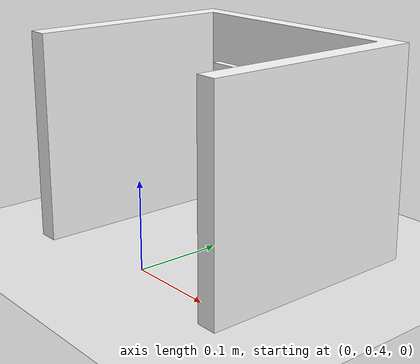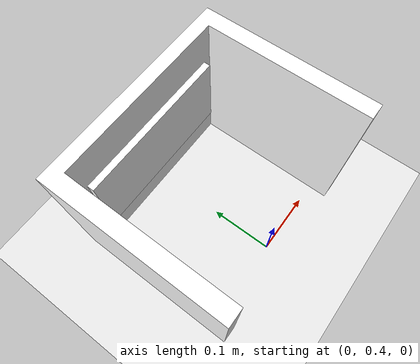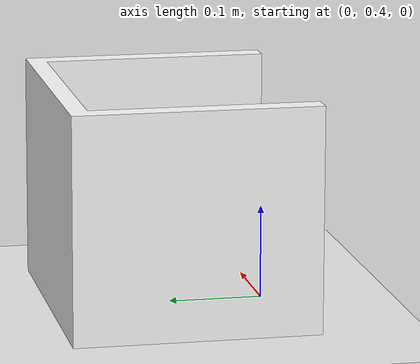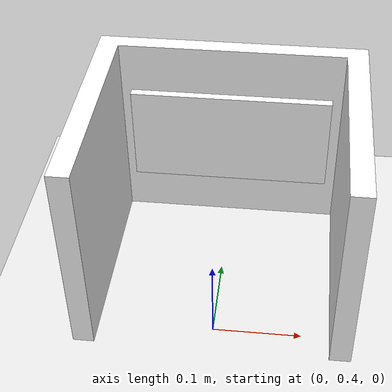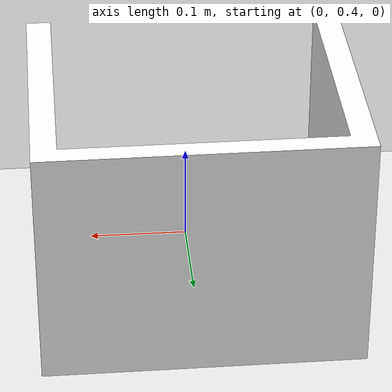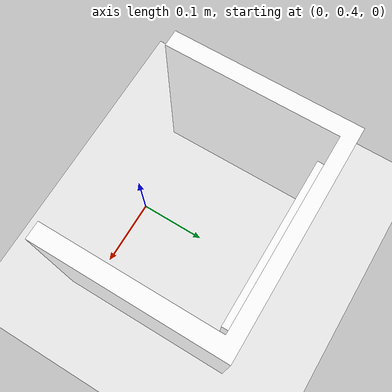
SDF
<sdf version='1.7'>
  <world name='tam_experiment'>
    <light name='sun' type='directional'>
      <cast_shadows>1</cast_shadows>
      <pose>0 0 4 0 -0 0</pose>
      <diffuse>1 1 1 1</diffuse>
      <specular>0.6 0.6 0.6 1</specular>
      <attenuation>
        <range>1500</range>
        <constant>0.9</constant>
        <linear>0.01</linear>
        <quadratic>0.005</quadratic>
      </attenuation>
      <direction>-0.5 0.1 -0.9</direction>
      <spot>
        <inner_angle>0</inner_angle>
        <outer_angle>0</outer_angle>
        <falloff>0</falloff>
      </spot>
    </light>
    <model name='ground_plane'>
      <static>1</static>
      <link name='link'>
        <collision name='collision'>
          <geometry>
            <plane>
              <normal>0 0 1</normal>
              <size>100 100</size>
            </plane>
          </geometry>
          <surface>
            <contact>
              <collide_bitmask>65535</collide_bitmask>
              <ode/>
            </contact>
            <friction>
              <ode>
                <mu>100</mu>
                <mu2>50</mu2>
              </ode>
              <torsional>
                <ode/>
              </torsional>
            </friction>
            <bounce/>
          </surface>
          <max_contacts>10</max_contacts>
        </collision>
        <visual name='visual'>
          <cast_shadows>0</cast_shadows>
          <geometry>
            <plane>
              <normal>0 0 1</normal>
              <size>100 100</size>
            </plane>
          </geometry>
          <material>
            <script>
              <uri>file://media/materials/scripts/gazebo.material</uri>
              <name>Gazebo/White</name>
            </script>
          </material>
        </visual>
        <self_collide>0</self_collide>
        <enable_wind>0</enable_wind>
        <kinematic>0</kinematic>
      </link>
    </model>
    <gravity>0 0 -9.8</gravity>
    <magnetic_field>6e-06 2.3e-05 -4.2e-05</magnetic_field>
    <atmosphere type='adiabatic'/>
    <physics type='ode'>
      <max_step_size>0.001</max_step_size>
      <real_time_factor>1</real_time_factor>
      <real_time_update_rate>1000</real_time_update_rate>
    </physics>
    <scene>
      <ambient>0.4 0.4 0.4 1</ambient>
      <background>0.7 0.7 0.7 1</background>
      <shadows>1</shadows>
    </scene>
    <wind/>
    <spherical_coordinates>
      <surface_model>EARTH_WGS84</surface_model>
      <latitude_deg>0</latitude_deg>
      <longitude_deg>0</longitude_deg>
      <elevation>0</elevation>
      <heading_deg>0</heading_deg>
    </spherical_coordinates>
    <gui fullscreen='0'>
      <camera name='user_camera'>
        <pose>3.22959 3.94204 2.96165 -0 0.533795 -2.50701</pose>
        <view_controller>orbit</view_controller>
        <projection_type>perspective</projection_type>
      </camera>
    </gui>

    <!-- Top -->
    <include>
      <uri>model://TAM</uri>
      <name>TAM_0</name>
      <pose>0.0 0.5 0 0 0 -1.5708</pose>
    </include>

  </world>
</sdf>

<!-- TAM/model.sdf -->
<sdf version="1.6">
  <model name="TAM">
    <static>true</static>
    <link name="base_link">
      <!-- Visual original del modelo (blanco por default) -->
      <visual name="visual">
        <geometry>
          <mesh>
            <uri>model://TAM/meshes/TAM.stl</uri>
            <scale>1 1.2 1</scale>
          </mesh>
        </geometry>
        <material>
          <ambient>1 1 1 1</ambient>
          <diffuse>1 1 1 1</diffuse>
          <specular>0.5 0.5 0.5 1</specular>
        </material>
      </visual>

      <!-- Visual adicional (rectángulo para cambio dinámico de color) -->
      <visual name="task_indicator">
        <pose>-0.105 0 0.12 0 0 0</pose> <!-- Ajusta la posición según necesidad -->
        <geometry>
          <box>
            <size>0.01 0.24 0.12</size> <!-- Ajusta tamaño según necesidad -->
          </box>
        </geometry>
        <material>
          <ambient>1 1 1 1</ambient>
          <diffuse>1 1 1 1</diffuse>
          <emissive>1 1 1 1</emissive> <!-- Brillo inicial (blanco standby) -->
        </material>
        <!-- Plugin de color  -->
        <plugin name="tam_color_plugin" filename="libTAMColorPlugin.so"/>
      </visual>

      <collision name="collision">
        <geometry>
          <mesh>
            <uri>model://TAM/meshes/TAM.stl</uri>
            <scale>1 1.2 1</scale>
          </mesh>
        </geometry>
      </collision>

    </link>
  </model>
</sdf>
